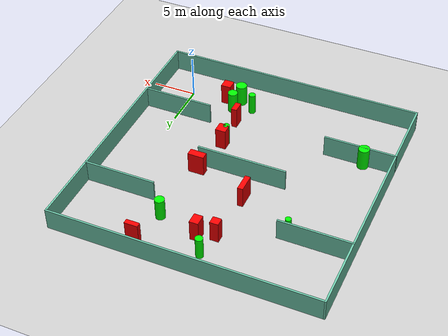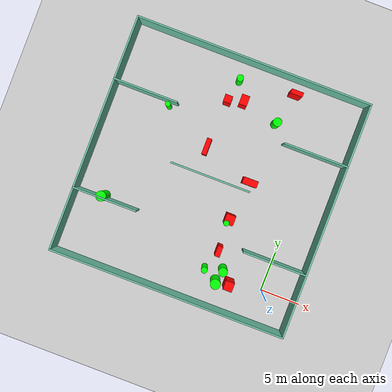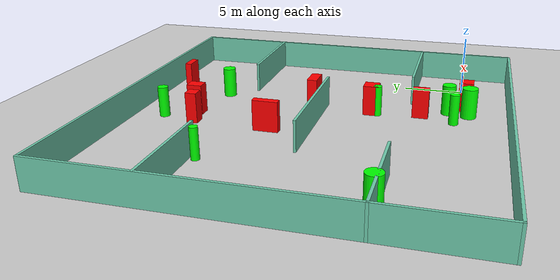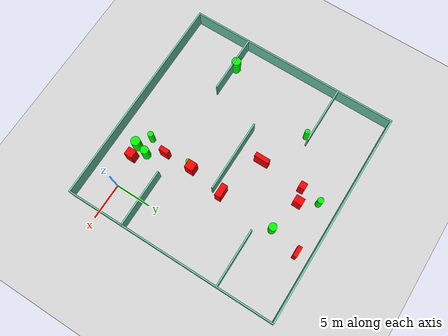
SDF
<sdf version="1.7">
 <world name="default">
  <light name="sun" type="directional">
   <pose>0 0 10 0 -0 0</pose>
   <diffuse>0.8 0.8 0.8 1</diffuse>
   <specular>0.2 0.2 0.2 1</specular>
   <attenuation>
    <range>1000</range>
    <constant>0.9</constant>
    <linear>0.01</linear>
    <quadratic>0.001</quadratic>
   </attenuation>
   <direction>-0.5 0.1 -0.9</direction>
   <spot><inner_angle>0</inner_angle><outer_angle>0</outer_angle><falloff>0</falloff></spot>
  </light>
  <model name="ground_plane">
   <static>1</static>
   <link name="link">
    <collision name="collision">
     <geometry><plane><normal>0 0 1</normal><size>100 100</size></plane></geometry>
     <surface>
      <contact><collide_bitmask>65535</collide_bitmask></contact>
      <friction><ode><mu>100</mu><mu2>50</mu2></ode></friction>
     </surface>
    </collision>
    <visual name="visual">
     <cast_shadows>0</cast_shadows>
     <geometry><plane><normal>0 0 1</normal><size>100 100</size></plane></geometry>
     <material>
      <script><uri>file://media/materials/scripts/gazebo.material</uri><name>Gazebo/Grey</name></script>
     </material>
    </visual>
   </link>
  </model>
  <gravity>0 0 -9.8</gravity>
  <magnetic_field>6e-06 2.3e-05 -4.2e-05</magnetic_field>
  <atmosphere type="adiabatic"/>
  <physics type="ode">
   <max_step_size>0.001</max_step_size>
   <real_time_factor>1</real_time_factor>
   <real_time_update_rate>1000</real_time_update_rate>
  </physics>
  <scene><ambient>0.4 0.4 0.4 1</ambient><background>0.7 0.7 0.7 1</background><shadows>1</shadows></scene>
  <spherical_coordinates>
   <surface_model>EARTH_WGS84</surface_model>
   <latitude_deg>0</latitude_deg>
   <longitude_deg>0</longitude_deg>
   <elevation>0</elevation>
   <heading_deg>0</heading_deg>
  </spherical_coordinates>
  <model name="my_base_walls">
   <link name="Wall_10">
    <collision name="Wall_10_Collision">
     <geometry><box><size>8.2 0.2 2.5</size></box></geometry>
     <pose>0 0 1.25 0 -0 0</pose>
    </collision>
    <visual name="Wall_10_Visual">
     <pose>0 0 1.25 0 -0 0</pose>
     <geometry><box><size>8.2 0.2 2.5</size></box></geometry>
     <material>
      <script><uri>file://media/materials/scripts/gazebo.material</uri><name>Gazebo/Grey</name></script>
      <ambient>0.435294 0.796078 0.67451 1</ambient>
     </material>
     <meta><layer>0</layer></meta>
    </visual>
    <pose>-11 -7 0 0 -0 0</pose>
   </link>
   <link name="Wall_12">
    <collision name="Wall_12_Collision">
     <geometry><box><size>8.2 0.2 2.5</size></box></geometry>
     <pose>0 0 1.25 0 -0 0</pose>
    </collision>
    <visual name="Wall_12_Visual">
     <pose>0 0 1.25 0 -0 0</pose>
     <geometry><box><size>8.2 0.2 2.5</size></box></geometry>
     <material>
      <script><uri>file://media/materials/scripts/gazebo.material</uri><name>Gazebo/Grey</name></script>
      <ambient>0.435294 0.796078 0.67451 1</ambient>
     </material>
     <meta><layer>0</layer></meta>
    </visual>
    <pose>-11 7 0 0 -0 0</pose>
   </link>
   <link name="Wall_14">
    <collision name="Wall_14_Collision">
     <geometry><box><size>8.2 0.2 2.5</size></box></geometry>
     <pose>0 0 1.25 0 -0 0</pose>
    </collision>
    <visual name="Wall_14_Visual">
     <pose>0 0 1.25 0 -0 0</pose>
     <geometry><box><size>8.2 0.2 2.5</size></box></geometry>
     <material>
      <script><uri>file://media/materials/scripts/gazebo.material</uri><name>Gazebo/Grey</name></script>
      <ambient>0.435294 0.796078 0.67451 1</ambient>
     </material>
     <meta><layer>0</layer></meta>
    </visual>
    <pose>11 7 0 0 -0 3.14159</pose>
   </link>
   <link name="Wall_16">
    <collision name="Wall_16_Collision">
     <geometry><box><size>10.2 0.2 2.5</size></box></geometry>
     <pose>0 0 1.25 0 -0 0</pose>
    </collision>
    <visual name="Wall_16_Visual">
     <pose>0 0 1.25 0 -0 0</pose>
     <geometry><box><size>10.2 0.2 2.5</size></box></geometry>
     <material>
      <script><uri>file://media/materials/scripts/gazebo.material</uri><name>Gazebo/Grey</name></script>
      <ambient>0.435294 0.796078 0.67451 1</ambient>
     </material>
     <meta><layer>0</layer></meta>
    </visual>
    <pose>0 0 0 0 -0 3.14159</pose>
   </link>
   <link name="Wall_2">
    <collision name="Wall_2_Collision">
     <geometry><box><size>30.2 0.2 2.5</size></box></geometry>
     <pose>0 0 1.25 0 -0 0</pose>
    </collision>
    <visual name="Wall_2_Visual">
     <pose>0 0 1.25 0 -0 0</pose>
     <geometry><box><size>30.2 0.2 2.5</size></box></geometry>
     <material>
      <script><uri>file://media/materials/scripts/gazebo.material</uri><name>Gazebo/Grey</name></script>
      <ambient>0.435294 0.796078 0.67451 1</ambient>
     </material>
     <meta><layer>0</layer></meta>
    </visual>
    <pose>0 -15 0 0 -0 3.14159</pose>
   </link>
   <link name="Wall_3">
    <collision name="Wall_3_Collision">
     <geometry><box><size>30.2 0.2 2.5</size></box></geometry>
     <pose>0 0 1.25 0 -0 0</pose>
    </collision>
    <visual name="Wall_3_Visual">
     <pose>0 0 1.25 0 -0 0</pose>
     <geometry><box><size>30.2 0.2 2.5</size></box></geometry>
     <material>
      <script><uri>file://media/materials/scripts/gazebo.material</uri><name>Gazebo/Grey</name></script>
      <ambient>0.435294 0.796078 0.67451 1</ambient>
     </material>
     <meta><layer>0</layer></meta>
    </visual>
    <pose>-15 0 0 0 -0 1.5708</pose>
   </link>
   <link name="Wall_4">
    <collision name="Wall_4_Collision">
     <geometry><box><size>30.2 0.2 2.5</size></box></geometry>
     <pose>0 0 1.25 0 -0 0</pose>
    </collision>
    <visual name="Wall_4_Visual">
     <pose>0 0 1.25 0 -0 0</pose>
     <geometry><box><size>30.2 0.2 2.5</size></box></geometry>
     <material>
      <script><uri>file://media/materials/scripts/gazebo.material</uri><name>Gazebo/Grey</name></script>
      <ambient>0.435294 0.796078 0.67451 1</ambient>
     </material>
     <meta><layer>0</layer></meta>
    </visual>
    <pose>0 15 0 0 -0 0</pose>
   </link>
   <link name="Wall_6">
    <collision name="Wall_6_Collision">
     <geometry><box><size>30.2 0.2 2.5</size></box></geometry>
     <pose>0 0 1.25 0 -0 0</pose>
    </collision>
    <visual name="Wall_6_Visual">
     <pose>0 0 1.25 0 -0 0</pose>
     <geometry><box><size>30.2 0.2 2.5</size></box></geometry>
     <material>
      <script><uri>file://media/materials/scripts/gazebo.material</uri><name>Gazebo/Grey</name></script>
      <ambient>0.435294 0.796078 0.67451 1</ambient>
     </material>
     <meta><layer>0</layer></meta>
    </visual>
    <pose>15 0 0 0 -0 1.5708</pose>
   </link>
   <link name="Wall_8">
    <collision name="Wall_8_Collision">
     <geometry><box><size>8.2 0.2 2.5</size></box></geometry>
     <pose>0 0 1.25 0 -0 0</pose>
    </collision>
    <visual name="Wall_8_Visual">
     <pose>0 0 1.25 0 -0 0</pose>
     <geometry><box><size>8.2 0.2 2.5</size></box></geometry>
     <material>
      <script><uri>file://media/materials/scripts/gazebo.material</uri><name>Gazebo/Grey</name></script>
      <ambient>0.435294 0.796078 0.67451 1</ambient>
     </material>
     <meta><layer>0</layer></meta>
    </visual>
    <pose>11 -7 0 0 -0 3.14159</pose>
   </link>
   <static>1</static>
   <pose>-11 11 0 0 -0 0</pose>
  </model>
  <model name="cylinder1">
   <static>1</static>
   <link name="link">
    <inertial>
     <mass>1</mass>
     <inertia><ixx>0.5</ixx><ixy>0</ixy><ixz>0</ixz><iyy>0.5</iyy><iyz>0</iyz><izz>1</izz></inertia>
    </inertial>
    <collision name="collision">
     <geometry><cylinder><radius>0.36306117401230836</radius><length>2.5</length></cylinder></geometry>
    </collision>
    <visual name="visual">
     <geometry><cylinder><radius>0.36306117401230836</radius><length>2.5</length></cylinder></geometry>
     <material>
      <ambient>0 1 0 1</ambient>
      <diffuse>0 1 0 1</diffuse>
      <specular>0.1 0.1 0.1 1</specular>
      <emissive>0 0 0 0</emissive>
     </material>
    </visual>
   </link>
   <pose>-7.2353776661990565 6.524390428535936 1.25 0 0 0</pose>
  </model>
  <model name="cylinder2">
   <static>1</static>
   <link name="link">
    <inertial>
     <mass>1</mass>
     <inertia><ixx>0.5</ixx><ixy>0</ixy><ixz>0</ixz><iyy>0.5</iyy><iyz>0</iyz><izz>1</izz></inertia>
    </inertial>
    <collision name="collision">
     <geometry><cylinder><radius>0.6319115768982344</radius><length>2.5</length></cylinder></geometry>
    </collision>
    <visual name="visual">
     <geometry><cylinder><radius>0.6319115768982344</radius><length>2.5</length></cylinder></geometry>
     <material>
      <ambient>0 1 0 1</ambient>
      <diffuse>0 1 0 1</diffuse>
      <specular>0.1 0.1 0.1 1</specular>
      <emissive>0 0 0 0</emissive>
     </material>
    </visual>
   </link>
   <pose>-22.501966147954203 4.208250272934844 1.25 0 0 0</pose>
  </model>
  <model name="cylinder3">
   <static>1</static>
   <link name="link">
    <inertial>
     <mass>1</mass>
     <inertia><ixx>0.5</ixx><ixy>0</ixy><ixz>0</ixz><iyy>0.5</iyy><iyz>0</iyz><izz>1</izz></inertia>
    </inertial>
    <collision name="collision">
     <geometry><cylinder><radius>0.3903944964046228</radius><length>2.5</length></cylinder></geometry>
    </collision>
    <visual name="visual">
     <geometry><cylinder><radius>0.3903944964046228</radius><length>2.5</length></cylinder></geometry>
     <material>
      <ambient>0 1 0 1</ambient>
      <diffuse>0 1 0 1</diffuse>
      <specular>0.1 0.1 0.1 1</specular>
      <emissive>0 0 0 0</emissive>
     </material>
    </visual>
   </link>
   <pose>-7.699561234015729 0.30382106971342404 1.25 0 0 0</pose>
  </model>
  <model name="cylinder4">
   <static>1</static>
   <link name="link">
    <inertial>
     <mass>1</mass>
     <inertia><ixx>0.5</ixx><ixy>0</ixy><ixz>0</ixz><iyy>0.5</iyy><iyz>0</iyz><izz>1</izz></inertia>
    </inertial>
    <collision name="collision">
     <geometry><cylinder><radius>0.6374148964723306</radius><length>2.5</length></cylinder></geometry>
    </collision>
    <visual name="visual">
     <geometry><cylinder><radius>0.6374148964723306</radius><length>2.5</length></cylinder></geometry>
     <material>
      <ambient>0 1 0 1</ambient>
      <diffuse>0 1 0 1</diffuse>
      <specular>0.1 0.1 0.1 1</specular>
      <emissive>0 0 0 0</emissive>
     </material>
    </visual>
   </link>
   <pose>-5.8765303627104934 -0.8070553132485632 1.25 0 0 0</pose>
  </model>
  <model name="cylinder5">
   <static>1</static>
   <link name="link">
    <inertial>
     <mass>1</mass>
     <inertia><ixx>0.5</ixx><ixy>0</ixy><ixz>0</ixz><iyy>0.5</iyy><iyz>0</iyz><izz>1</izz></inertia>
    </inertial>
    <collision name="collision">
     <geometry><cylinder><radius>0.4197747683706172</radius><length>2.5</length></cylinder></geometry>
    </collision>
    <visual name="visual">
     <geometry><cylinder><radius>0.4197747683706172</radius><length>2.5</length></cylinder></geometry>
     <material>
      <ambient>0 1 0 1</ambient>
      <diffuse>0 1 0 1</diffuse>
      <specular>0.1 0.1 0.1 1</specular>
      <emissive>0 0 0 0</emissive>
     </material>
    </visual>
   </link>
   <pose>-11.866219296153972 23.414551802913696 1.25 0 0 0</pose>
  </model>
  <model name="cylinder6">
   <static>1</static>
   <link name="link">
    <inertial>
     <mass>1</mass>
     <inertia><ixx>0.5</ixx><ixy>0</ixy><ixz>0</ixz><iyy>0.5</iyy><iyz>0</iyz><izz>1</izz></inertia>
    </inertial>
    <collision name="collision">
     <geometry><cylinder><radius>0.5381170279597887</radius><length>2.5</length></cylinder></geometry>
    </collision>
    <visual name="visual">
     <geometry><cylinder><radius>0.5381170279597887</radius><length>2.5</length></cylinder></geometry>
     <material>
      <ambient>0 1 0 1</ambient>
      <diffuse>0 1 0 1</diffuse>
      <specular>0.1 0.1 0.1 1</specular>
      <emissive>0 0 0 0</emissive>
     </material>
    </visual>
   </link>
   <pose>-5.806599723303584 20.050324749284016 1.25 0 0 0</pose>
  </model>
  <model name="cylinder7">
   <static>1</static>
   <link name="link">
    <inertial>
     <mass>1</mass>
     <inertia><ixx>0.5</ixx><ixy>0</ixy><ixz>0</ixz><iyy>0.5</iyy><iyz>0</iyz><izz>1</izz></inertia>
    </inertial>
    <collision name="collision">
     <geometry><cylinder><radius>0.3301141721534018</radius><length>2.5</length></cylinder></geometry>
    </collision>
    <visual name="visual">
     <geometry><cylinder><radius>0.3301141721534018</radius><length>2.5</length></cylinder></geometry>
     <material>
      <ambient>0 1 0 1</ambient>
      <diffuse>0 1 0 1</diffuse>
      <specular>0.1 0.1 0.1 1</specular>
      <emissive>0 0 0 0</emissive>
     </material>
    </visual>
   </link>
   <pose>-18.909918007903666 17.42666190706013 1.25 0 0 0</pose>
  </model>
  <model name="cylinder8">
   <static>1</static>
   <link name="link">
    <inertial>
     <mass>1</mass>
     <inertia><ixx>0.5</ixx><ixy>0</ixy><ixz>0</ixz><iyy>0.5</iyy><iyz>0</iyz><izz>1</izz></inertia>
    </inertial>
    <collision name="collision">
     <geometry><cylinder><radius>0.5570791305967446</radius><length>2.5</length></cylinder></geometry>
    </collision>
    <visual name="visual">
     <geometry><cylinder><radius>0.5570791305967446</radius><length>2.5</length></cylinder></geometry>
     <material>
      <ambient>0 1 0 1</ambient>
      <diffuse>0 1 0 1</diffuse>
      <specular>0.1 0.1 0.1 1</specular>
      <emissive>0 0 0 0</emissive>
     </material>
    </visual>
   </link>
   <pose>-5.501064062379388 0.8643993101126095 1.25 0 0 0</pose>
  </model>
  <model name="box1">
   <static>1</static>
   <link name="link">
    <inertial>
     <mass>1</mass>
     <inertia><ixx>0.083</ixx><ixy>0</ixy><ixz>0</ixz><iyy>0.083</iyy><iyz>0</iyz><izz>0.083</izz></inertia>
    </inertial>
    <collision name="collision">
     <geometry><box><size>1.1805611486338186 1.2433302804942667 2.5</size></box></geometry>
    </collision>
    <visual name="visual">
     <geometry><box><size>1.1805611486338186 1.2433302804942667 2.5</size></box></geometry>
     <material>
      <ambient>1 0 0 1</ambient>
      <diffuse>1 0 0 1</diffuse>
      <specular>0.1 0.1 0.1 1</specular>
      <emissive>0 0 0 0</emissive>
     </material>
    </visual>
    <sensor name="my_contact" type="contact">
     <contact><collision>box_collision</collision><topic>__default_topic__</topic></contact>
    </sensor>
   </link>
   <pose>-6.989495824684564 7.0430888924778525 1.25 0 0 0</pose>
  </model>
  <model name="box2">
   <static>1</static>
   <link name="link">
    <inertial>
     <mass>1</mass>
     <inertia><ixx>0.083</ixx><ixy>0</ixy><ixz>0</ixz><iyy>0.083</iyy><iyz>0</iyz><izz>0.083</izz></inertia>
    </inertial>
    <collision name="collision">
     <geometry><box><size>1.8297614899867767 0.843141521749975 2.5</size></box></geometry>
    </collision>
    <visual name="visual">
     <geometry><box><size>1.8297614899867767 0.843141521749975 2.5</size></box></geometry>
     <material>
      <ambient>1 0 0 1</ambient>
      <diffuse>1 0 0 1</diffuse>
      <specular>0.1 0.1 0.1 1</specular>
      <emissive>0 0 0 0</emissive>
     </material>
    </visual>
    <sensor name="my_contact" type="contact">
     <contact><collision>box_collision</collision><topic>__default_topic__</topic></contact>
    </sensor>
   </link>
   <pose>-6.282771711613684 12.11481410952825 1.25 0 0 0</pose>
  </model>
  <model name="box3">
   <static>1</static>
   <link name="link">
    <inertial>
     <mass>1</mass>
     <inertia><ixx>0.083</ixx><ixy>0</ixy><ixz>0</ixz><iyy>0.083</iyy><iyz>0</iyz><izz>0.083</izz></inertia>
    </inertial>
    <collision name="collision">
     <geometry><box><size>1.1337080530530212 1.1526306128356976 2.5</size></box></geometry>
    </collision>
    <visual name="visual">
     <geometry><box><size>1.1337080530530212 1.1526306128356976 2.5</size></box></geometry>
     <material>
      <ambient>1 0 0 1</ambient>
      <diffuse>1 0 0 1</diffuse>
      <specular>0.1 0.1 0.1 1</specular>
      <emissive>0 0 0 0</emissive>
     </material>
    </visual>
    <sensor name="my_contact" type="contact">
     <contact><collision>box_collision</collision><topic>__default_topic__</topic></contact>
    </sensor>
   </link>
   <pose>-4.263075982658622 -0.48019940487487034 1.25 0 0 0</pose>
  </model>
  <model name="box4">
   <static>1</static>
   <link name="link">
    <inertial>
     <mass>1</mass>
     <inertia><ixx>0.083</ixx><ixy>0</ixy><ixz>0</ixz><iyy>0.083</iyy><iyz>0</iyz><izz>0.083</izz></inertia>
    </inertial>
    <collision name="collision">
     <geometry><box><size>0.6403983461656532 1.3100449829940015 2.5</size></box></geometry>
    </collision>
    <visual name="visual">
     <geometry><box><size>0.6403983461656532 1.3100449829940015 2.5</size></box></geometry>
     <material>
      <ambient>1 0 0 1</ambient>
      <diffuse>1 0 0 1</diffuse>
      <specular>0.1 0.1 0.1 1</specular>
      <emissive>0 0 0 0</emissive>
     </material>
    </visual>
    <sensor name="my_contact" type="contact">
     <contact><collision>box_collision</collision><topic>__default_topic__</topic></contact>
    </sensor>
   </link>
   <pose>-6.872940755464699 3.0125639478061537 1.25 0 0 0</pose>
  </model>
  <model name="box5">
   <static>1</static>
   <link name="link">
    <inertial>
     <mass>1</mass>
     <inertia><ixx>0.083</ixx><ixy>0</ixy><ixz>0</ixz><iyy>0.083</iyy><iyz>0</iyz><izz>0.083</izz></inertia>
    </inertial>
    <collision name="collision">
     <geometry><box><size>1.504124811493949 0.5545482082613107 2.5</size></box></geometry>
    </collision>
    <visual name="visual">
     <geometry><box><size>1.504124811493949 0.5545482082613107 2.5</size></box></geometry>
     <material>
      <ambient>1 0 0 1</ambient>
      <diffuse>1 0 0 1</diffuse>
      <specular>0.1 0.1 0.1 1</specular>
      <emissive>0 0 0 0</emissive>
     </material>
    </visual>
    <sensor name="my_contact" type="contact">
     <contact><collision>box_collision</collision><topic>__default_topic__</topic></contact>
    </sensor>
   </link>
   <pose>-4.833425095931641 24.16934637391624 1.25 0 0 0</pose>
  </model>
  <model name="box6">
   <static>1</static>
   <link name="link">
    <inertial>
     <mass>1</mass>
     <inertia><ixx>0.083</ixx><ixy>0</ixy><ixz>0</ixz><iyy>0.083</iyy><iyz>0</iyz><izz>0.083</izz></inertia>
    </inertial>
    <collision name="collision">
     <geometry><box><size>0.9967952697341442 1.2535069864641935 2.5</size></box></geometry>
    </collision>
    <visual name="visual">
     <geometry><box><size>0.9967952697341442 1.2535069864641935 2.5</size></box></geometry>
     <material>
      <ambient>1 0 0 1</ambient>
      <diffuse>1 0 0 1</diffuse>
      <specular>0.1 0.1 0.1 1</specular>
      <emissive>0 0 0 0</emissive>
     </material>
    </visual>
    <sensor name="my_contact" type="contact">
     <contact><collision>box_collision</collision><topic>__default_topic__</topic></contact>
    </sensor>
   </link>
   <pose>-10.456338737917628 21.11046540403741 1.25 0 0 0</pose>
  </model>
  <model name="box7">
   <static>1</static>
   <link name="link">
    <inertial>
     <mass>1</mass>
     <inertia><ixx>0.083</ixx><ixy>0</ixy><ixz>0</ixz><iyy>0.083</iyy><iyz>0</iyz><izz>0.083</izz></inertia>
    </inertial>
    <collision name="collision">
     <geometry><box><size>0.9562663002274097 0.9152232170362357 2.5</size></box></geometry>
    </collision>
    <visual name="visual">
     <geometry><box><size>0.9562663002274097 0.9152232170362357 2.5</size></box></geometry>
     <material>
      <ambient>1 0 0 1</ambient>
      <diffuse>1 0 0 1</diffuse>
      <specular>0.1 0.1 0.1 1</specular>
      <emissive>0 0 0 0</emissive>
     </material>
    </visual>
    <sensor name="my_contact" type="contact">
     <contact><collision>box_collision</collision><topic>__default_topic__</topic></contact>
    </sensor>
   </link>
   <pose>-12.353381635969605 20.556548043877353 1.25 0 0 0</pose>
  </model>
  <model name="box8">
   <static>1</static>
   <link name="link">
    <inertial>
     <mass>1</mass>
     <inertia><ixx>0.083</ixx><ixy>0</ixy><ixz>0</ixz><iyy>0.083</iyy><iyz>0</iyz><izz>0.083</izz></inertia>
    </inertial>
    <collision name="collision">
     <geometry><box><size>0.6037402222369384 2.0641670407348345 2.5</size></box></geometry>
    </collision>
    <visual name="visual">
     <geometry><box><size>0.6037402222369384 2.0641670407348345 2.5</size></box></geometry>
     <material>
      <ambient>1 0 0 1</ambient>
      <diffuse>1 0 0 1</diffuse>
      <specular>0.1 0.1 0.1 1</specular>
      <emissive>0 0 0 0</emissive>
     </material>
    </visual>
    <sensor name="my_contact" type="contact">
     <contact><collision>box_collision</collision><topic>__default_topic__</topic></contact>
    </sensor>
   </link>
   <pose>-12.72323051674223 14.297910498316575 1.25 0 0 0</pose>
  </model>
 </world>
</sdf>
